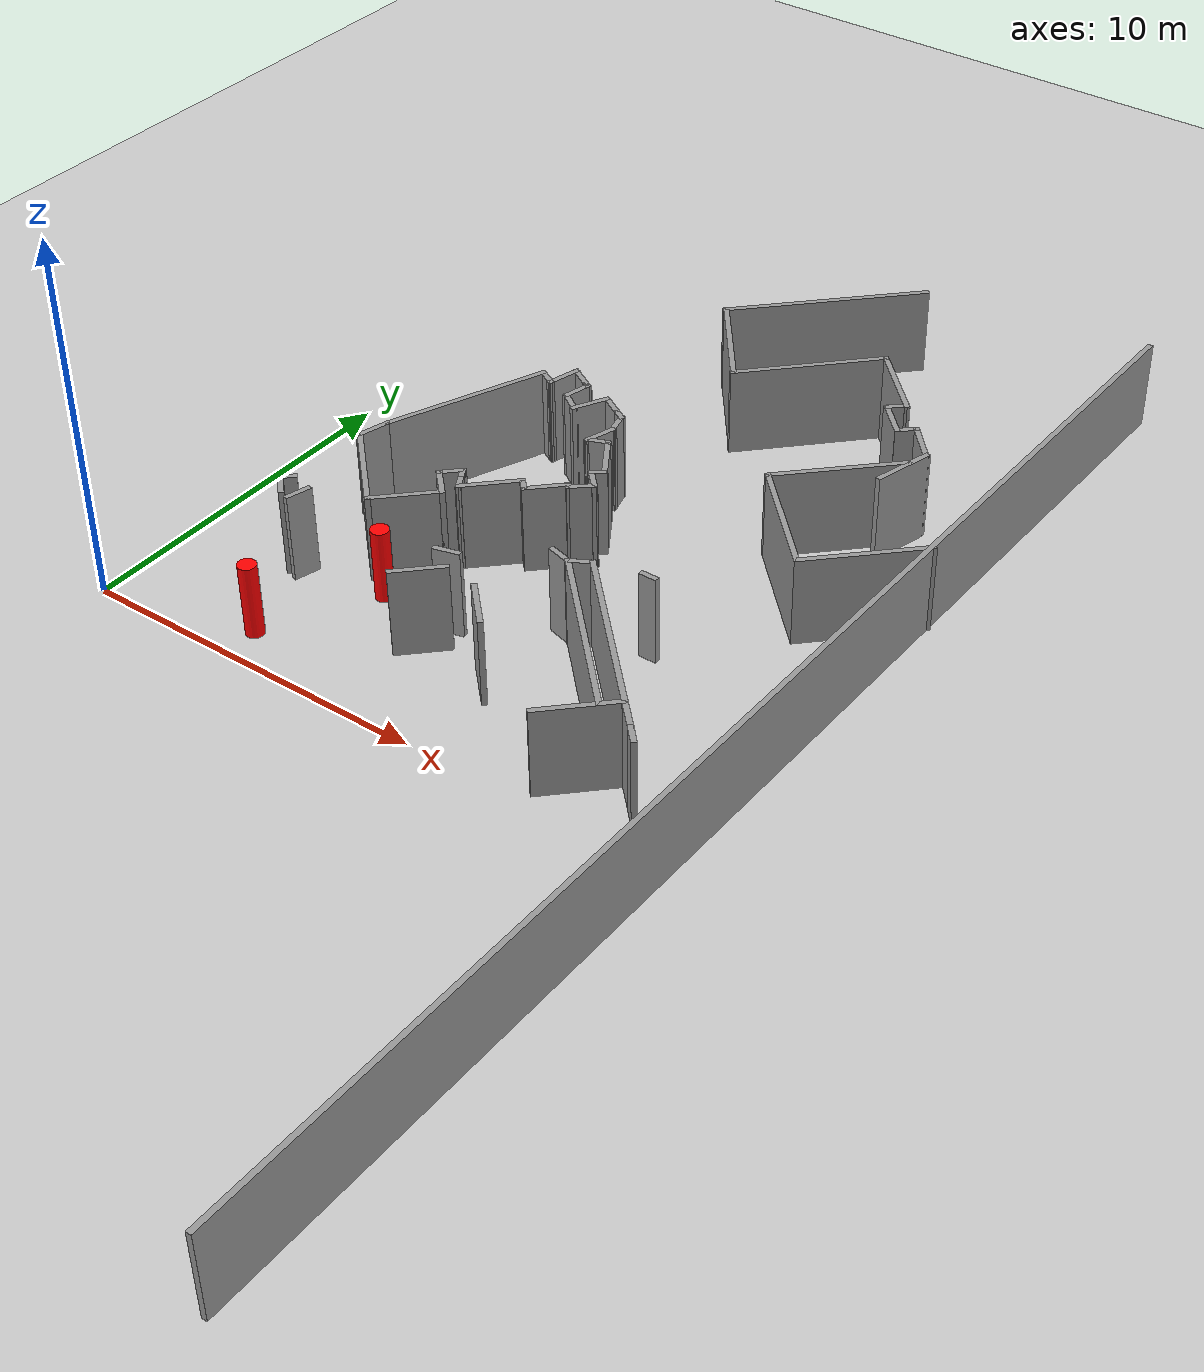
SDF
<sdf version="1.7">
 <world name="default">
  <model name="ground_plane">
   <static>1</static>
   <link name="link">
    <collision name="collision">
     <geometry><plane><normal>0 0 1</normal><size>100 100</size></plane></geometry>
     <surface>
      <contact><collide_bitmask>65535</collide_bitmask></contact>
      <friction><ode><mu>100</mu><mu2>50</mu2></ode></friction>
     </surface>
    </collision>
    <visual name="visual">
     <cast_shadows>0</cast_shadows>
     <geometry><plane><normal>0 0 1</normal><size>100 100</size></plane></geometry>
     <material>
      <script><uri>file://media/materials/scripts/gazebo.material</uri><name>Gazebo/Grey</name></script>
      <ambient>0.45 0.45 0.45 1</ambient>
     </material>
    </visual>
   </link>
  </model>
  <model name="grit_v2">
   <pose>2.3598 3.87752 0.097164 0 -0 0</pose>
   <link name="Wall_108">
    <collision name="Wall_108_Collision">
     <geometry><box><size>5.8158 0.15 2.5</size></box></geometry>
     <pose>0 0 1.25 0 -0 0</pose>
    </collision>
    <visual name="Wall_108_Visual">
     <pose>0 0 1.25 0 -0 0</pose>
     <geometry><box><size>5.8158 0.15 2.5</size></box></geometry>
     <material>
      <script><uri>file://media/materials/scripts/gazebo.material</uri><name>Gazebo/Grey</name></script>
      <ambient>0.15 0.15 0.15 1</ambient>
     </material>
     <meta><layer>0</layer></meta>
    </visual>
    <pose>6.8454 15.0408 0 0 -0 0.796946</pose>
   </link>
   <link name="Wall_111">
    <collision name="Wall_111_Collision">
     <geometry><box><size>4.31594 0.15 2.5</size></box></geometry>
     <pose>0 0 1.25 0 -0 0</pose>
    </collision>
    <visual name="Wall_111_Visual">
     <pose>0 0 1.25 0 -0 0</pose>
     <geometry><box><size>4.31594 0.15 2.5</size></box></geometry>
     <material>
      <script><uri>file://media/materials/scripts/gazebo.material</uri><name>Gazebo/Grey</name></script>
      <ambient>0.15 0.15 0.15 1</ambient>
     </material>
     <meta><layer>0</layer></meta>
    </visual>
    <pose>8.29293 11.9869 0 0 -0 0.801103</pose>
   </link>
   <link name="Wall_112">
    <collision name="Wall_112_Collision">
     <geometry><box><size>2.5 0.15 2.5</size></box></geometry>
     <pose>0 0 1.25 0 -0 0</pose>
    </collision>
    <visual name="Wall_112_Visual">
     <pose>0 0 1.25 0 -0 0</pose>
     <geometry><box><size>2.5 0.15 2.5</size></box></geometry>
     <material>
      <script><uri>file://media/materials/scripts/gazebo.material</uri><name>Gazebo/Grey</name></script>
      <ambient>0.15 0.15 0.15 1</ambient>
     </material>
     <meta><layer>0</layer></meta>
    </visual>
    <pose>10.5733 12.6519 0 0 -0 -0.785398</pose>
   </link>
   <link name="Wall_113">
    <collision name="Wall_113_Collision">
     <geometry><box><size>0.655092 0.15 2.5</size></box></geometry>
     <pose>0 0 1.25 0 -0 0</pose>
    </collision>
    <visual name="Wall_113_Visual">
     <pose>0 0 1.25 0 -0 0</pose>
     <geometry><box><size>0.655092 0.15 2.5</size></box></geometry>
     <material>
      <script><uri>file://media/materials/scripts/gazebo.material</uri><name>Gazebo/Grey</name></script>
      <ambient>0.15 0.15 0.15 1</ambient>
     </material>
     <meta><layer>0</layer></meta>
    </visual>
    <pose>11.2172 11.6513 0 0 -0 -2.40451</pose>
   </link>
   <link name="Wall_114">
    <collision name="Wall_114_Collision">
     <geometry><box><size>1.25 0.15 2.5</size></box></geometry>
     <pose>0 0 1.25 0 -0 0</pose>
    </collision>
    <visual name="Wall_114_Visual">
     <pose>0 0 1.25 0 -0 0</pose>
     <geometry><box><size>1.25 0.15 2.5</size></box></geometry>
     <material>
      <script><uri>file://media/materials/scripts/gazebo.material</uri><name>Gazebo/Grey</name></script>
      <ambient>0.15 0.15 0.15 1</ambient>
     </material>
     <meta><layer>0</layer></meta>
    </visual>
    <pose>11.4076 11.0926 0 0 -0 -0.785398</pose>
   </link>
   <link name="Wall_115">
    <collision name="Wall_115_Collision">
     <geometry><box><size>0.655092 0.15 2.5</size></box></geometry>
     <pose>0 0 1.25 0 -0 0</pose>
    </collision>
    <visual name="Wall_115_Visual">
     <pose>0 0 1.25 0 -0 0</pose>
     <geometry><box><size>0.655092 0.15 2.5</size></box></geometry>
     <material>
      <script><uri>file://media/materials/scripts/gazebo.material</uri><name>Gazebo/Grey</name></script>
      <ambient>0.15 0.15 0.15 1</ambient>
     </material>
     <meta><layer>0</layer></meta>
    </visual>
    <pose>11.995 10.8734 0 0 -0 0.737081</pose>
   </link>
   <link name="Wall_116">
    <collision name="Wall_116_Collision">
     <geometry><box><size>1.33207 0.15 2.5</size></box></geometry>
     <pose>0 0 1.25 0 -0 0</pose>
    </collision>
    <visual name="Wall_116_Visual">
     <pose>0 0 1.25 0 -0 0</pose>
     <geometry><box><size>1.33207 0.15 2.5</size></box></geometry>
     <material>
      <script><uri>file://media/materials/scripts/gazebo.material</uri><name>Gazebo/Grey</name></script>
      <ambient>0.15 0.15 0.15 1</ambient>
     </material>
     <meta><layer>0</layer></meta>
    </visual>
    <pose>12.5795 10.6058 0 0 -0 -0.833153</pose>
   </link>
   <link name="Wall_117">
    <collision name="Wall_117_Collision">
     <geometry><box><size>1.75 0.15 2.5</size></box></geometry>
     <pose>0 0 1.25 0 -0 0</pose>
    </collision>
    <visual name="Wall_117_Visual">
     <pose>0 0 1.25 0 -0 0</pose>
     <geometry><box><size>1.75 0.15 2.5</size></box></geometry>
     <material>
      <script><uri>file://media/materials/scripts/gazebo.material</uri><name>Gazebo/Grey</name></script>
      <ambient>0.15 0.15 0.15 1</ambient>
     </material>
     <meta><layer>0</layer></meta>
    </visual>
    <pose>12.7966 9.39565 0 0 -0 -1.8326</pose>
   </link>
   <link name="Wall_119">
    <collision name="Wall_119_Collision">
     <geometry><box><size>3.35633 0.15 2.5</size></box></geometry>
     <pose>0 0 1.25 0 -0 0</pose>
    </collision>
    <visual name="Wall_119_Visual">
     <pose>0 0 1.25 0 -0 0</pose>
     <geometry><box><size>3.35633 0.15 2.5</size></box></geometry>
     <material>
      <script><uri>file://media/materials/scripts/gazebo.material</uri><name>Gazebo/Grey</name></script>
      <ambient>0.15 0.15 0.15 1</ambient>
     </material>
     <meta><layer>0</layer></meta>
    </visual>
    <pose>5.85443 11.776 0 0 -0 -0.90605</pose>
   </link>
   <link name="Wall_121">
    <collision name="Wall_121_Collision">
     <geometry><box><size>3.75 0.15 2.5</size></box></geometry>
     <pose>0 0 1.25 0 -0 0</pose>
    </collision>
    <visual name="Wall_121_Visual">
     <pose>0 0 1.25 0 -0 0</pose>
     <geometry><box><size>3.75 0.15 2.5</size></box></geometry>
     <material>
      <script><uri>file://media/materials/scripts/gazebo.material</uri><name>Gazebo/Grey</name></script>
      <ambient>0.15 0.15 0.15 1</ambient>
     </material>
     <meta><layer>0</layer></meta>
    </visual>
    <pose>11.5372 5.81042 0 0 -0 2.35619</pose>
   </link>
   <link name="Wall_122">
    <collision name="Wall_122_Collision">
     <geometry><box><size>3.75 0.15 2.5</size></box></geometry>
     <pose>0 0 1.25 0 -0 0</pose>
    </collision>
    <visual name="Wall_122_Visual">
     <pose>0 0 1.25 0 -0 0</pose>
     <geometry><box><size>3.75 0.15 2.5</size></box></geometry>
     <material>
      <script><uri>file://media/materials/scripts/gazebo.material</uri><name>Gazebo/Grey</name></script>
      <ambient>0.15 0.15 0.15 1</ambient>
     </material>
     <meta><layer>0</layer></meta>
    </visual>
    <pose>11.5372 8.356 0 0 -0 0.785398</pose>
   </link>
   <link name="Wall_124">
    <collision name="Wall_124_Collision">
     <geometry><box><size>3.5 0.15 2.5</size></box></geometry>
     <pose>0 0 1.25 0 -0 0</pose>
    </collision>
    <visual name="Wall_124_Visual">
     <pose>0 0 1.25 0 -0 0</pose>
     <geometry><box><size>3.5 0.15 2.5</size></box></geometry>
     <material>
      <script><uri>file://media/materials/scripts/gazebo.material</uri><name>Gazebo/Grey</name></script>
      <ambient>0.15 0.15 0.15 1</ambient>
     </material>
     <meta><layer>0</layer></meta>
    </visual>
    <pose>13.9944 5.72203 0 0 -0 0.785398</pose>
   </link>
   <link name="Wall_137">
    <collision name="Wall_137_Collision">
     <geometry><box><size>0.75 0.15 2.5</size></box></geometry>
     <pose>0 0 1.25 0 -0 0</pose>
    </collision>
    <visual name="Wall_137_Visual">
     <pose>0 0 1.25 0 -0 0</pose>
     <geometry><box><size>0.75 0.15 2.5</size></box></geometry>
     <material>
      <script><uri>file://media/materials/scripts/gazebo.material</uri><name>Gazebo/Grey</name></script>
      <ambient>0.15 0.15 0.15 1</ambient>
     </material>
     <meta><layer>0</layer></meta>
    </visual>
    <pose>0.730843 -0.398156 0 0 -0 2.35619</pose>
   </link>
   <link name="Wall_138">
    <collision name="Wall_138_Collision">
     <geometry><box><size>0.5 0.15 2.5</size></box></geometry>
     <pose>0 0 1.25 0 -0 0</pose>
    </collision>
    <visual name="Wall_138_Visual">
     <pose>0 0 1.25 0 -0 0</pose>
     <geometry><box><size>0.5 0.15 2.5</size></box></geometry>
     <material>
      <script><uri>file://media/materials/scripts/gazebo.material</uri><name>Gazebo/Grey</name></script>
      <ambient>0.15 0.15 0.15 1</ambient>
     </material>
     <meta><layer>0</layer></meta>
    </visual>
    <pose>0.642454 -0.06228 0 0 -0 0.785398</pose>
   </link>
   <link name="Wall_150">
    <collision name="Wall_150_Collision">
     <geometry><box><size>0.75 0.15 2.5</size></box></geometry>
     <pose>0 0 1.25 0 -0 0</pose>
    </collision>
    <visual name="Wall_150_Visual">
     <pose>0 0 1.25 0 -0 0</pose>
     <geometry><box><size>0.75 0.15 2.5</size></box></geometry>
     <material>
      <script><uri>file://media/materials/scripts/gazebo.material</uri><name>Gazebo/Grey</name></script>
      <ambient>0.15 0.15 0.15 1</ambient>
     </material>
     <meta><layer>0</layer></meta>
    </visual>
    <pose>1.32504 -0.41635 0 0 -0 1.309</pose>
   </link>
   <link name="Wall_152">
    <collision name="Wall_152_Collision">
     <geometry><box><size>0.75 0.15 2.5</size></box></geometry>
     <pose>0 0 1.25 0 -0 0</pose>
    </collision>
    <visual name="Wall_152_Visual">
     <pose>0 0 1.25 0 -0 0</pose>
     <geometry><box><size>0.75 0.15 2.5</size></box></geometry>
     <material>
      <script><uri>file://media/materials/scripts/gazebo.material</uri><name>Gazebo/Grey</name></script>
      <ambient>0.15 0.15 0.15 1</ambient>
     </material>
     <meta><layer>0</layer></meta>
    </visual>
    <pose>5.84152 -0.089352 0 0 -0 0.261799</pose>
   </link>
   <link name="Wall_154">
    <collision name="Wall_154_Collision">
     <geometry><box><size>0.75 0.15 2.5</size></box></geometry>
     <pose>0 0 1.25 0 -0 0</pose>
    </collision>
    <visual name="Wall_154_Visual">
     <pose>0 0 1.25 0 -0 0</pose>
     <geometry><box><size>0.75 0.15 2.5</size></box></geometry>
     <material>
      <script><uri>file://media/materials/scripts/gazebo.material</uri><name>Gazebo/Grey</name></script>
      <ambient>0.15 0.15 0.15 1</ambient>
     </material>
     <meta><layer>0</layer></meta>
    </visual>
    <pose>8.14255 1.37921 0 0 -0 -0.261799</pose>
   </link>
   <link name="Wall_156">
    <collision name="Wall_156_Collision">
     <geometry><box><size>2 0.15 2.5</size></box></geometry>
     <pose>0 0 1.25 0 -0 0</pose>
    </collision>
    <visual name="Wall_156_Visual">
     <pose>0 0 1.25 0 -0 0</pose>
     <geometry><box><size>2 0.15 2.5</size></box></geometry>
     <material>
      <script><uri>file://media/materials/scripts/gazebo.material</uri><name>Gazebo/Grey</name></script>
      <ambient>0.15 0.15 0.15 1</ambient>
     </material>
     <meta><layer>0</layer></meta>
    </visual>
    <pose>3.52231 1.06719 0 0 -0 0.785398</pose>
   </link>
   <link name="Wall_157">
    <collision name="Wall_157_Collision">
     <geometry><box><size>1 0.15 2.5</size></box></geometry>
     <pose>0 0 1.25 0 -0 0</pose>
    </collision>
    <visual name="Wall_157_Visual">
     <pose>0 0 1.25 0 -0 0</pose>
     <geometry><box><size>1 0.15 2.5</size></box></geometry>
     <material>
      <script><uri>file://media/materials/scripts/gazebo.material</uri><name>Gazebo/Grey</name></script>
      <ambient>0.15 0.15 0.15 1</ambient>
     </material>
     <meta><layer>0</layer></meta>
    </visual>
    <pose>3.87586 2.02178 0 0 -0 2.35619</pose>
   </link>
   <link name="Wall_158">
    <collision name="Wall_158_Collision">
     <geometry><box><size>0.75 0.15 2.5</size></box></geometry>
     <pose>0 0 1.25 0 -0 0</pose>
    </collision>
    <visual name="Wall_158_Visual">
     <pose>0 0 1.25 0 -0 0</pose>
     <geometry><box><size>0.75 0.15 2.5</size></box></geometry>
     <material>
      <script><uri>file://media/materials/scripts/gazebo.material</uri><name>Gazebo/Grey</name></script>
      <ambient>0.15 0.15 0.15 1</ambient>
     </material>
     <meta><layer>0</layer></meta>
    </visual>
    <pose>3.78747 2.53444 0 0 -0 0.785398</pose>
   </link>
   <link name="Wall_159">
    <collision name="Wall_159_Collision">
     <geometry><box><size>0.5 0.15 2.5</size></box></geometry>
     <pose>0 0 1.25 0 -0 0</pose>
    </collision>
    <visual name="Wall_159_Visual">
     <pose>0 0 1.25 0 -0 0</pose>
     <geometry><box><size>0.5 0.15 2.5</size></box></geometry>
     <material>
      <script><uri>file://media/materials/scripts/gazebo.material</uri><name>Gazebo/Grey</name></script>
      <ambient>0.15 0.15 0.15 1</ambient>
     </material>
     <meta><layer>0</layer></meta>
    </visual>
    <pose>4.08711 2.59502 0 0 -0 -1.0472</pose>
   </link>
   <link name="Wall_161">
    <collision name="Wall_161_Collision">
     <geometry><box><size>0.5 0.15 2.5</size></box></geometry>
     <pose>0 0 1.25 0 -0 0</pose>
    </collision>
    <visual name="Wall_161_Visual">
     <pose>0 0 1.25 0 -0 0</pose>
     <geometry><box><size>0.5 0.15 2.5</size></box></geometry>
     <material>
      <script><uri>file://media/materials/scripts/gazebo.material</uri><name>Gazebo/Grey</name></script>
      <ambient>0.15 0.15 0.15 1</ambient>
     </material>
     <meta><layer>0</layer></meta>
    </visual>
    <pose>4.26211 2.29191 0 0 -0 -1.0472</pose>
   </link>
   <link name="Wall_162">
    <collision name="Wall_162_Collision">
     <geometry><box><size>1.75 0.15 2.5</size></box></geometry>
     <pose>0 0 1.25 0 -0 0</pose>
    </collision>
    <visual name="Wall_162_Visual">
     <pose>0 0 1.25 0 -0 0</pose>
     <geometry><box><size>1.75 0.15 2.5</size></box></geometry>
     <material>
      <script><uri>file://media/materials/scripts/gazebo.material</uri><name>Gazebo/Grey</name></script>
      <ambient>0.15 0.15 0.15 1</ambient>
     </material>
     <meta><layer>0</layer></meta>
    </visual>
    <pose>4.91529 2.70604 0 0 -0 0.785398</pose>
   </link>
   <link name="Wall_163">
    <collision name="Wall_163_Collision">
     <geometry><box><size>0.5 0.15 2.5</size></box></geometry>
     <pose>0 0 1.25 0 -0 0</pose>
    </collision>
    <visual name="Wall_163_Visual">
     <pose>0 0 1.25 0 -0 0</pose>
     <geometry><box><size>0.5 0.15 2.5</size></box></geometry>
     <material>
      <script><uri>file://media/materials/scripts/gazebo.material</uri><name>Gazebo/Grey</name></script>
      <ambient>0.15 0.15 0.15 1</ambient>
     </material>
     <meta><layer>0</layer></meta>
    </visual>
    <pose>5.60472 3.14798 0 0 -0 -0.785398</pose>
   </link>
   <link name="Wall_164">
    <collision name="Wall_164_Collision">
     <geometry><box><size>1.25 0.15 2.5</size></box></geometry>
     <pose>0 0 1.25 0 -0 0</pose>
    </collision>
    <visual name="Wall_164_Visual">
     <pose>0 0 1.25 0 -0 0</pose>
     <geometry><box><size>1.25 0.15 2.5</size></box></geometry>
     <material>
      <script><uri>file://media/materials/scripts/gazebo.material</uri><name>Gazebo/Grey</name></script>
      <ambient>0.15 0.15 0.15 1</ambient>
     </material>
     <meta><layer>0</layer></meta>
    </visual>
    <pose>6.11737 3.41314 0 0 -0 0.785398</pose>
   </link>
   <link name="Wall_165">
    <collision name="Wall_165_Collision">
     <geometry><box><size>0.25 0.15 2.5</size></box></geometry>
     <pose>0 0 1.25 0 -0 0</pose>
    </collision>
    <visual name="Wall_165_Visual">
     <pose>0 0 1.25 0 -0 0</pose>
     <geometry><box><size>0.25 0.15 2.5</size></box></geometry>
     <material>
      <script><uri>file://media/materials/scripts/gazebo.material</uri><name>Gazebo/Grey</name></script>
      <ambient>0.15 0.15 0.15 1</ambient>
     </material>
     <meta><layer>0</layer></meta>
    </visual>
    <pose>6.54164 3.7667 0 0 -0 -0.785398</pose>
   </link>
   <link name="Wall_166">
    <collision name="Wall_166_Collision">
     <geometry><box><size>0.790803 0.15 2.5</size></box></geometry>
     <pose>0 0 1.25 0 -0 0</pose>
    </collision>
    <visual name="Wall_166_Visual">
     <pose>0 0 1.25 0 -0 0</pose>
     <geometry><box><size>0.790803 0.15 2.5</size></box></geometry>
     <material>
      <script><uri>file://media/materials/scripts/gazebo.material</uri><name>Gazebo/Grey</name></script>
      <ambient>0.15 0.15 0.15 1</ambient>
     </material>
     <meta><layer>0</layer></meta>
    </visual>
    <pose>6.81855 3.94184 0 0 -0 0.716806</pose>
   </link>
   <link name="Wall_167">
    <collision name="Wall_167_Collision">
     <geometry><box><size>0.75 0.15 2.5</size></box></geometry>
     <pose>0 0 1.25 0 -0 0</pose>
    </collision>
    <visual name="Wall_167_Visual">
     <pose>0 0 1.25 0 -0 0</pose>
     <geometry><box><size>0.75 0.15 2.5</size></box></geometry>
     <material>
      <script><uri>file://media/materials/scripts/gazebo.material</uri><name>Gazebo/Grey</name></script>
      <ambient>0.15 0.15 0.15 1</ambient>
     </material>
     <meta><layer>0</layer></meta>
    </visual>
    <pose>6.84797 4.3612 0 0 -0 2.35619</pose>
   </link>
   <link name="Wall_168">
    <collision name="Wall_168_Collision">
     <geometry><box><size>0.489693 0.15 2.5</size></box></geometry>
     <pose>0 0 1.25 0 -0 0</pose>
    </collision>
    <visual name="Wall_168_Visual">
     <pose>0 0 1.25 0 -0 0</pose>
     <geometry><box><size>0.489693 0.15 2.5</size></box></geometry>
     <material>
      <script><uri>file://media/materials/scripts/gazebo.material</uri><name>Gazebo/Grey</name></script>
      <ambient>0.15 0.15 0.15 1</ambient>
     </material>
     <meta><layer>0</layer></meta>
    </visual>
    <pose>6.77364 4.67589 0 0 -0 0.62438</pose>
   </link>
   <link name="Wall_170">
    <collision name="Wall_170_Collision">
     <geometry><box><size>1.45475 0.15 2.5</size></box></geometry>
     <pose>0 0 1.25 0 -0 0</pose>
    </collision>
    <visual name="Wall_170_Visual">
     <pose>0 0 1.25 0 -0 0</pose>
     <geometry><box><size>1.45475 0.15 2.5</size></box></geometry>
     <material>
      <script><uri>file://media/materials/scripts/gazebo.material</uri><name>Gazebo/Grey</name></script>
      <ambient>0.15 0.15 0.15 1</ambient>
     </material>
     <meta><layer>0</layer></meta>
    </visual>
    <pose>6.54457 5.32044 0 0 -0 -0.989593</pose>
   </link>
   <link name="Wall_173">
    <collision name="Wall_173_Collision">
     <geometry><box><size>3 0.15 2.5</size></box></geometry>
     <pose>0 0 1.25 0 -0 0</pose>
    </collision>
    <visual name="Wall_173_Visual">
     <pose>0 0 1.25 0 -0 0</pose>
     <geometry><box><size>3 0.15 2.5</size></box></geometry>
     <material>
      <script><uri>file://media/materials/scripts/gazebo.material</uri><name>Gazebo/Grey</name></script>
      <ambient>0.15 0.15 0.15 1</ambient>
     </material>
     <meta><layer>0</layer></meta>
    </visual>
    <pose>1.86061 1.42074 0 0 -0 2.35619</pose>
   </link>
   <link name="Wall_174">
    <collision name="Wall_174_Collision">
     <geometry><box><size>1 0.15 2.5</size></box></geometry>
     <pose>0 0 1.25 0 -0 0</pose>
    </collision>
    <visual name="Wall_174_Visual">
     <pose>0 0 1.25 0 -0 0</pose>
     <geometry><box><size>1 0.15 2.5</size></box></geometry>
     <material>
      <script><uri>file://media/materials/scripts/gazebo.material</uri><name>Gazebo/Grey</name></script>
      <ambient>0.15 0.15 0.15 1</ambient>
     </material>
     <meta><layer>0</layer></meta>
    </visual>
    <pose>0.962979 2.83889 0 0 -0 1.309</pose>
   </link>
   <link name="Wall_176">
    <collision name="Wall_176_Collision">
     <geometry><box><size>0.658656 0.15 2.5</size></box></geometry>
     <pose>0 0 1.25 0 -0 0</pose>
    </collision>
    <visual name="Wall_176_Visual">
     <pose>0 0 1.25 0 -0 0</pose>
     <geometry><box><size>0.658656 0.15 2.5</size></box></geometry>
     <material>
      <script><uri>file://media/materials/scripts/gazebo.material</uri><name>Gazebo/Grey</name></script>
      <ambient>0.15 0.15 0.15 1</ambient>
     </material>
     <meta><layer>0</layer></meta>
    </visual>
    <pose>3.03264 7.38742 0 0 -0 -0.522795</pose>
   </link>
   <link name="Wall_177">
    <collision name="Wall_177_Collision">
     <geometry><box><size>1 0.15 2.5</size></box></geometry>
     <pose>0 0 1.25 0 -0 0</pose>
    </collision>
    <visual name="Wall_177_Visual">
     <pose>0 0 1.25 0 -0 0</pose>
     <geometry><box><size>1 0.15 2.5</size></box></geometry>
     <material>
      <script><uri>file://media/materials/scripts/gazebo.material</uri><name>Gazebo/Grey</name></script>
      <ambient>0.15 0.15 0.15 1</ambient>
     </material>
     <meta><layer>0</layer></meta>
    </visual>
    <pose>3.36299 7.67095 0 0 -0 1.309</pose>
   </link>
   <link name="Wall_178">
    <collision name="Wall_178_Collision">
     <geometry><box><size>0.841344 0.15 2.5</size></box></geometry>
     <pose>0 0 1.25 0 -0 0</pose>
    </collision>
    <visual name="Wall_178_Visual">
     <pose>0 0 1.25 0 -0 0</pose>
     <geometry><box><size>0.841344 0.15 2.5</size></box></geometry>
     <material>
      <script><uri>file://media/materials/scripts/gazebo.material</uri><name>Gazebo/Grey</name></script>
      <ambient>0.15 0.15 0.15 1</ambient>
     </material>
     <meta><layer>0</layer></meta>
    </visual>
    <pose>3.77225 7.90846 0 0 -0 -0.52419</pose>
   </link>
   <link name="Wall_180">
    <collision name="Wall_180_Collision">
     <geometry><box><size>0.25 0.15 2.5</size></box></geometry>
     <pose>0 0 1.25 0 -0 0</pose>
    </collision>
    <visual name="Wall_180_Visual">
     <pose>0 0 1.25 0 -0 0</pose>
     <geometry><box><size>0.25 0.15 2.5</size></box></geometry>
     <material>
      <script><uri>file://media/materials/scripts/gazebo.material</uri><name>Gazebo/Grey</name></script>
      <ambient>0.15 0.15 0.15 1</ambient>
     </material>
     <meta><layer>0</layer></meta>
    </visual>
    <pose>4.11481 7.71044 0 0 -0 -0.523599</pose>
   </link>
   <link name="Wall_181">
    <collision name="Wall_181_Collision">
     <geometry><box><size>0.863143 0.15 2.5</size></box></geometry>
     <pose>0 0 1.25 0 -0 0</pose>
    </collision>
    <visual name="Wall_181_Visual">
     <pose>0 0 1.25 0 -0 0</pose>
     <geometry><box><size>0.863143 0.15 2.5</size></box></geometry>
     <material>
      <script><uri>file://media/materials/scripts/gazebo.material</uri><name>Gazebo/Grey</name></script>
      <ambient>0.15 0.15 0.15 1</ambient>
     </material>
     <meta><layer>0</layer></meta>
    </visual>
    <pose>4.0706 7.33978 0 0 -0 -1.81875</pose>
   </link>
   <link name="Wall_182">
    <collision name="Wall_182_Collision">
     <geometry><box><size>0.772525 0.15 2.5</size></box></geometry>
     <pose>0 0 1.25 0 -0 0</pose>
    </collision>
    <visual name="Wall_182_Visual">
     <pose>0 0 1.25 0 -0 0</pose>
     <geometry><box><size>0.772525 0.15 2.5</size></box></geometry>
     <material>
      <script><uri>file://media/materials/scripts/gazebo.material</uri><name>Gazebo/Grey</name></script>
      <ambient>0.15 0.15 0.15 1</ambient>
     </material>
     <meta><layer>0</layer></meta>
    </visual>
    <pose>4.23961 6.82438 0 0 -0 -0.602137</pose>
   </link>
   <link name="Wall_183">
    <collision name="Wall_183_Collision">
     <geometry><box><size>1.10745 0.15 2.5</size></box></geometry>
     <pose>0 0 1.25 0 -0 0</pose>
    </collision>
    <visual name="Wall_183_Visual">
     <pose>0 0 1.25 0 -0 0</pose>
     <geometry><box><size>1.10745 0.15 2.5</size></box></geometry>
     <material>
      <script><uri>file://media/materials/scripts/gazebo.material</uri><name>Gazebo/Grey</name></script>
      <ambient>0.15 0.15 0.15 1</ambient>
     </material>
     <meta><layer>0</layer></meta>
    </visual>
    <pose>4.71849 7.05888 0 0 -0 1.08774</pose>
   </link>
   <link name="Wall_185">
    <collision name="Wall_185_Collision">
     <geometry><box><size>0.75 0.15 2.5</size></box></geometry>
     <pose>0 0 1.25 0 -0 0</pose>
    </collision>
    <visual name="Wall_185_Visual">
     <pose>0 0 1.25 0 -0 0</pose>
     <geometry><box><size>0.75 0.15 2.5</size></box></geometry>
     <material>
      <script><uri>file://media/materials/scripts/gazebo.material</uri><name>Gazebo/Grey</name></script>
      <ambient>0.15 0.15 0.15 1</ambient>
     </material>
     <meta><layer>0</layer></meta>
    </visual>
    <pose>5.20066 7.33283 0 0 -0 -0.523599</pose>
   </link>
   <link name="Wall_186">
    <collision name="Wall_186_Collision">
     <geometry><box><size>0.5 0.15 2.5</size></box></geometry>
     <pose>0 0 1.25 0 -0 0</pose>
    </collision>
    <visual name="Wall_186_Visual">
     <pose>0 0 1.25 0 -0 0</pose>
     <geometry><box><size>0.5 0.15 2.5</size></box></geometry>
     <material>
      <script><uri>file://media/materials/scripts/gazebo.material</uri><name>Gazebo/Grey</name></script>
      <ambient>0.15 0.15 0.15 1</ambient>
     </material>
     <meta><layer>0</layer></meta>
    </visual>
    <pose>5.61203 7.09533 0 0 -0 -0.523599</pose>
   </link>
   <link name="Wall_187">
    <collision name="Wall_187_Collision">
     <geometry><box><size>0.75 0.15 2.5</size></box></geometry>
     <pose>0 0 1.25 0 -0 0</pose>
    </collision>
    <visual name="Wall_187_Visual">
     <pose>0 0 1.25 0 -0 0</pose>
     <geometry><box><size>0.75 0.15 2.5</size></box></geometry>
     <material>
      <script><uri>file://media/materials/scripts/gazebo.material</uri><name>Gazebo/Grey</name></script>
      <ambient>0.15 0.15 0.15 1</ambient>
     </material>
     <meta><layer>0</layer></meta>
    </visual>
    <pose>5.84123 6.71805 0 0 -0 -1.309</pose>
   </link>
   <link name="Wall_189">
    <collision name="Wall_189_Collision">
     <geometry><box><size>0.942471 0.15 2.5</size></box></geometry>
     <pose>0 0 1.25 0 -0 0</pose>
    </collision>
    <visual name="Wall_189_Visual">
     <pose>0 0 1.25 0 -0 0</pose>
     <geometry><box><size>0.942471 0.15 2.5</size></box></geometry>
     <material>
      <script><uri>file://media/materials/scripts/gazebo.material</uri><name>Gazebo/Grey</name></script>
      <ambient>0.15 0.15 0.15 1</ambient>
     </material>
     <meta><layer>0</layer></meta>
    </visual>
    <pose>5.80248 6.04952 0 0 -0 1.27266</pose>
   </link>
   <link name="Wall_191">
    <collision name="Wall_191_Collision">
     <geometry><box><size>0.686935 0.15 2.5</size></box></geometry>
     <pose>0 0 1.25 0 -0 0</pose>
    </collision>
    <visual name="Wall_191_Visual">
     <pose>0 0 1.25 0 -0 0</pose>
     <geometry><box><size>0.686935 0.15 2.5</size></box></geometry>
     <material>
      <script><uri>file://media/materials/scripts/gazebo.material</uri><name>Gazebo/Grey</name></script>
      <ambient>0.15 0.15 0.15 1</ambient>
     </material>
     <meta><layer>0</layer></meta>
    </visual>
    <pose>5.93625 5.78335 0 0 -0 0.37153</pose>
   </link>
   <link name="Wall_193">
    <collision name="Wall_193_Collision">
     <geometry><box><size>4.75601 0.15 2.5</size></box></geometry>
     <pose>0 0 1.25 0 -0 0</pose>
    </collision>
    <visual name="Wall_193_Visual">
     <pose>0 0 1.25 0 -0 0</pose>
     <geometry><box><size>4.75601 0.15 2.5</size></box></geometry>
     <material>
      <script><uri>file://media/materials/scripts/gazebo.material</uri><name>Gazebo/Grey</name></script>
      <ambient>0.15 0.15 0.15 1</ambient>
     </material>
     <meta><layer>0</layer></meta>
    </visual>
    <pose>1.94263 5.38191 0 0 -0 1.18358</pose>
   </link>
   <link name="Wall_197">
    <collision name="Wall_197_Collision">
     <geometry><box><size>1.5 0.15 2.5</size></box></geometry>
     <pose>0 0 1.25 0 -0 0</pose>
    </collision>
    <visual name="Wall_197_Visual">
     <pose>0 0 1.25 0 -0 0</pose>
     <geometry><box><size>1.5 0.15 2.5</size></box></geometry>
     <material>
      <script><uri>file://media/materials/scripts/gazebo.material</uri><name>Gazebo/Grey</name></script>
      <ambient>0.15 0.15 0.15 1</ambient>
     </material>
     <meta><layer>0</layer></meta>
    </visual>
    <pose>5.7605 -1.06738 0 0 -0 0.785398</pose>
   </link>
   <link name="Wall_199">
    <collision name="Wall_199_Collision">
     <geometry><box><size>1.5 0.15 2.5</size></box></geometry>
     <pose>0 0 1.25 0 -0 0</pose>
    </collision>
    <visual name="Wall_199_Visual">
     <pose>0 0 1.25 0 -0 0</pose>
     <geometry><box><size>1.5 0.15 2.5</size></box></geometry>
     <material>
      <script><uri>file://media/materials/scripts/gazebo.material</uri><name>Gazebo/Grey</name></script>
      <ambient>0.15 0.15 0.15 1</ambient>
     </material>
     <meta><layer>0</layer></meta>
    </visual>
    <pose>7.73102 -1.25493 0 0 -0 -0.785398</pose>
   </link>
   <link name="Wall_218">
    <collision name="Wall_218_Collision">
     <geometry><box><size>2.25 0.15 2.5</size></box></geometry>
     <pose>0 0 1.25 0 -0 0</pose>
    </collision>
    <visual name="Wall_218_Visual">
     <pose>0 0 1.25 0 -0 0</pose>
     <geometry><box><size>2.25 0.15 2.5</size></box></geometry>
     <material>
      <script><uri>file://media/materials/scripts/gazebo.material</uri><name>Gazebo/Grey</name></script>
      <ambient>0.15 0.15 0.15 1</ambient>
     </material>
     <meta><layer>0</layer></meta>
    </visual>
    <pose>11.8872 -2.8268 0 0 -0 0.785398</pose>
   </link>
   <link name="Wall_220">
    <collision name="Wall_220_Collision">
     <geometry><box><size>5.5 0.15 2.5</size></box></geometry>
     <pose>0 0 1.25 0 -0 0</pose>
    </collision>
    <visual name="Wall_220_Visual">
     <pose>0 0 1.25 0 -0 0</pose>
     <geometry><box><size>5.5 0.15 2.5</size></box></geometry>
     <material>
      <script><uri>file://media/materials/scripts/gazebo.material</uri><name>Gazebo/Grey</name></script>
      <ambient>0.15 0.15 0.15 1</ambient>
     </material>
     <meta><layer>0</layer></meta>
    </visual>
    <pose>10.3238 -0.589943 0 0 -0 -0.785398</pose>
   </link>
   <link name="Wall_222">
    <collision name="Wall_222_Collision">
     <geometry><box><size>0.75 0.15 2.5</size></box></geometry>
     <pose>0 0 1.25 0 -0 0</pose>
    </collision>
    <visual name="Wall_222_Visual">
     <pose>0 0 1.25 0 -0 0</pose>
     <geometry><box><size>0.75 0.15 2.5</size></box></geometry>
     <material>
      <script><uri>file://media/materials/scripts/gazebo.material</uri><name>Gazebo/Grey</name></script>
      <ambient>0.15 0.15 0.15 1</ambient>
     </material>
     <meta><layer>0</layer></meta>
    </visual>
    <pose>8.69214 1.45157 0 0 -0 0.523599</pose>
   </link>
   <link name="Wall_223">
    <collision name="Wall_223_Collision">
     <geometry><box><size>6.25 0.15 2.5</size></box></geometry>
     <pose>0 0 1.25 0 -0 0</pose>
    </collision>
    <visual name="Wall_223_Visual">
     <pose>0 0 1.25 0 -0 0</pose>
     <geometry><box><size>6.25 0.15 2.5</size></box></geometry>
     <material>
      <script><uri>file://media/materials/scripts/gazebo.material</uri><name>Gazebo/Grey</name></script>
      <ambient>0.15 0.15 0.15 1</ambient>
     </material>
     <meta><layer>0</layer></meta>
    </visual>
    <pose>11.1086 -0.555108 0 0 -0 -0.785398</pose>
   </link>
   <link name="Wall_224">
    <collision name="Wall_224_Collision">
     <geometry><box><size>0.606891 0.15 2.5</size></box></geometry>
     <pose>0 0 1.25 0 -0 0</pose>
    </collision>
    <visual name="Wall_224_Visual">
     <pose>0 0 1.25 0 -0 0</pose>
     <geometry><box><size>0.606891 0.15 2.5</size></box></geometry>
     <material>
      <script><uri>file://media/materials/scripts/gazebo.material</uri><name>Gazebo/Grey</name></script>
      <ambient>0.15 0.15 0.15 1</ambient>
     </material>
     <meta><layer>0</layer></meta>
    </visual>
    <pose>13.4248 -2.87536 0 0 -0 -0.798113</pose>
   </link>
   <link name="Wall_226">
    <collision name="Wall_226_Collision">
     <geometry><box><size>0.5 0.15 2.5</size></box></geometry>
     <pose>0 0 1.25 0 -0 0</pose>
    </collision>
    <visual name="Wall_226_Visual">
     <pose>0 0 1.25 0 -0 0</pose>
     <geometry><box><size>0.5 0.15 2.5</size></box></geometry>
     <material>
      <script><uri>file://media/materials/scripts/gazebo.material</uri><name>Gazebo/Grey</name></script>
      <ambient>0.15 0.15 0.15 1</ambient>
     </material>
     <meta><layer>0</layer></meta>
    </visual>
    <pose>10.3452 1.95349 0 0 -0 0</pose>
   </link>
   <link name="Wall_3">
    <collision name="Wall_3_Collision">
     <geometry><box><size>36.5 0.15 2.5</size></box></geometry>
     <pose>0 0 1.25 0 -0 0</pose>
    </collision>
    <visual name="Wall_3_Visual">
     <pose>0 0 1.25 0 -0 0</pose>
     <geometry><box><size>36.5 0.15 2.5</size></box></geometry>
     <material>
      <script><uri>file://media/materials/scripts/gazebo.material</uri><name>Gazebo/Grey</name></script>
      <ambient>0.15 0.15 0.15 1</ambient>
     </material>
     <meta><layer>0</layer></meta>
    </visual>
    <pose>15.1401 0 0 0 -0 -1.5708</pose>
   </link>
   <static>1</static>
  </model>
  <model name="obstacle_human_1">
   <static>1</static>
   <pose>4.18727 1.04177 0.550025 0 -0 0</pose>
   <link name="body">
    <visual name="visual">
     <geometry><cylinder><radius>0.25</radius><length>3</length></cylinder></geometry>
     <material><ambient>1 0 0 1</ambient><diffuse>1 0 0 1</diffuse><emissive>1 0 0 1</emissive></material>
    </visual>
    <collision name="collision">
     <geometry><cylinder><radius>0.25</radius><length>3</length></cylinder></geometry>
    </collision>
   </link>
  </model>
  <model name="obstacle_human_2">
   <static>1</static>
   <pose>5.82093 4.0246 0.550025 0 -0 0</pose>
   <link name="body">
    <visual name="visual">
     <geometry><cylinder><radius>0.25</radius><length>3</length></cylinder></geometry>
     <material><ambient>1 0 0 1</ambient><diffuse>1 0 0 1</diffuse><emissive>1 0 0 1</emissive></material>
    </visual>
    <collision name="collision">
     <geometry><cylinder><radius>0.25</radius><length>3</length></cylinder></geometry>
    </collision>
   </link>
  </model>
 </world>
</sdf>
